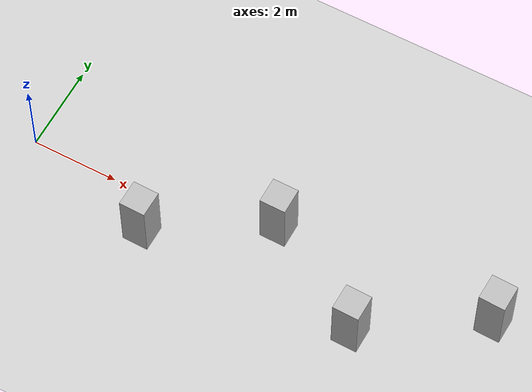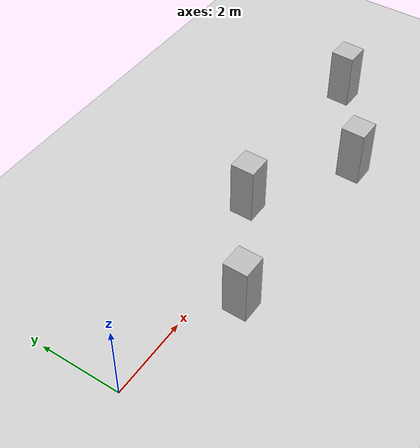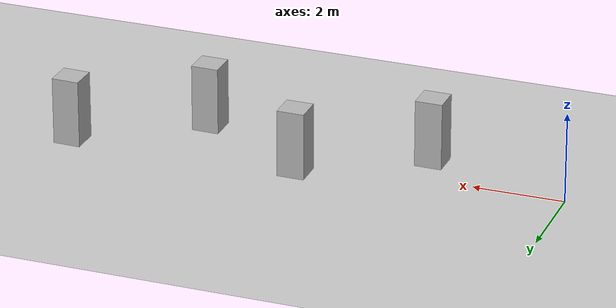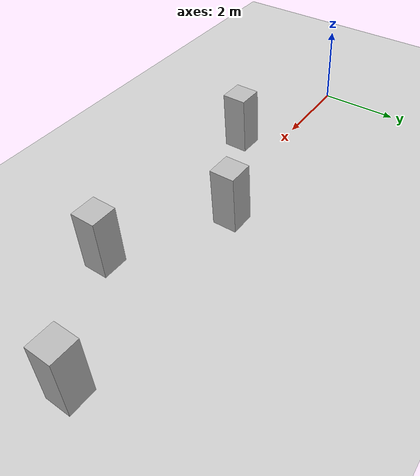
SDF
<?xml version="1.0"?>
<sdf version="1.6">
  <world name="v2-04g-r3-static-s5028">
    <gravity>0 0 -9.81</gravity>
    <physics name="v2_deterministic" type="ode">
      <max_step_size>0.002</max_step_size>
      <real_time_update_rate>500</real_time_update_rate>
    </physics>
    <include>
      <uri>model://sun</uri>
    </include>
    <include>
      <uri>model://ground_plane</uri>
    </include>
    <model name="pillar-1">
      <static>true</static>
      <pose>3.177994465 -0.845516047 0.750000000 0 0 -0.010265242</pose>
      <link name="link">
        <collision name="collision">
          <geometry>
            <box>
              <size>0.600000 0.600000 1.500000</size>
            </box>
          </geometry>
        </collision>
        <visual name="visual">
          <geometry>
            <box>
              <size>0.600000 0.600000 1.500000</size>
            </box>
          </geometry>
        </visual>
      </link>
    </model>
    <model name="pillar-2">
      <static>true</static>
      <pose>5.723036161 0.621170525 0.750000000 0 0 -0.001626564</pose>
      <link name="link">
        <collision name="collision">
          <geometry>
            <box>
              <size>0.600000 0.600000 1.500000</size>
            </box>
          </geometry>
        </collision>
        <visual name="visual">
          <geometry>
            <box>
              <size>0.600000 0.600000 1.500000</size>
            </box>
          </geometry>
        </visual>
      </link>
    </model>
    <model name="pillar-3">
      <static>true</static>
      <pose>8.232079759 -0.865903665 0.750000000 0 0 -0.015620503</pose>
      <link name="link">
        <collision name="collision">
          <geometry>
            <box>
              <size>0.600000 0.600000 1.500000</size>
            </box>
          </geometry>
        </collision>
        <visual name="visual">
          <geometry>
            <box>
              <size>0.600000 0.600000 1.500000</size>
            </box>
          </geometry>
        </visual>
      </link>
    </model>
    <model name="pillar-4">
      <static>true</static>
      <pose>10.758742670 0.766612748 0.750000000 0 0 -0.028348666</pose>
      <link name="link">
        <collision name="collision">
          <geometry>
            <box>
              <size>0.600000 0.600000 1.500000</size>
            </box>
          </geometry>
        </collision>
        <visual name="visual">
          <geometry>
            <box>
              <size>0.600000 0.600000 1.500000</size>
            </box>
          </geometry>
        </visual>
      </link>
    </model>
  </world>
</sdf>
